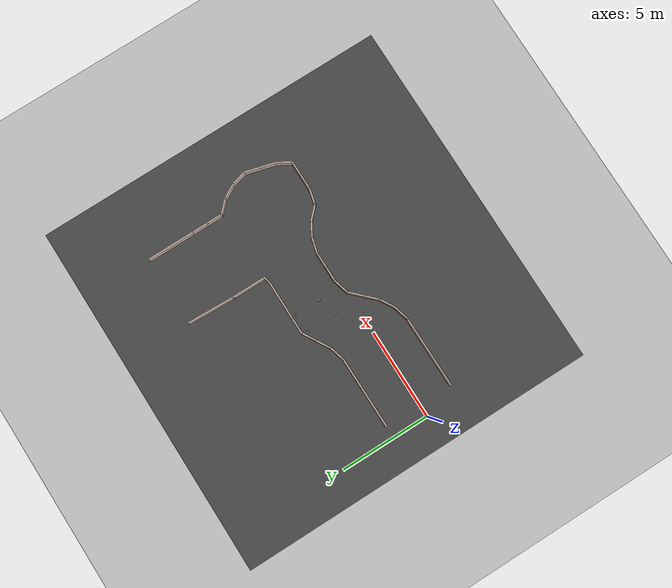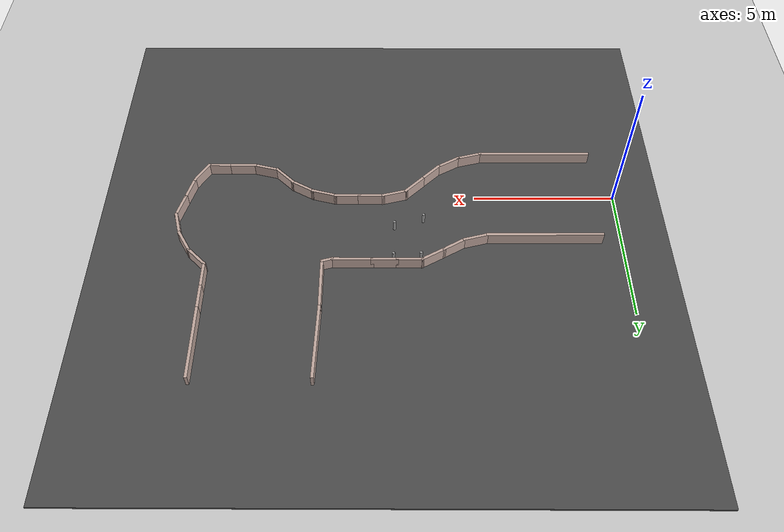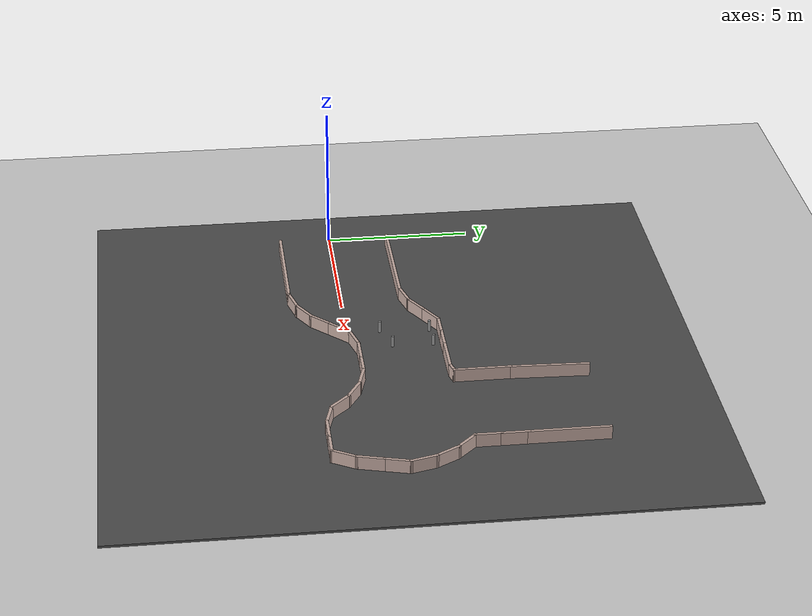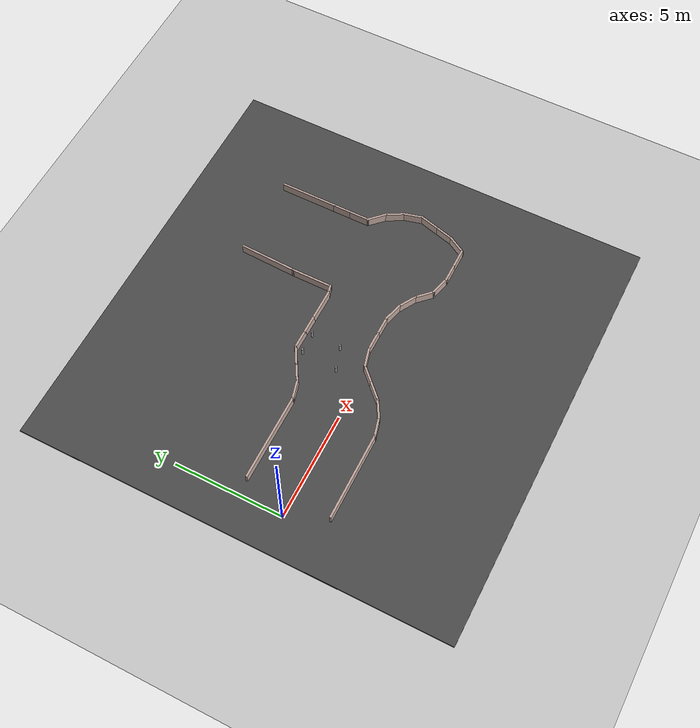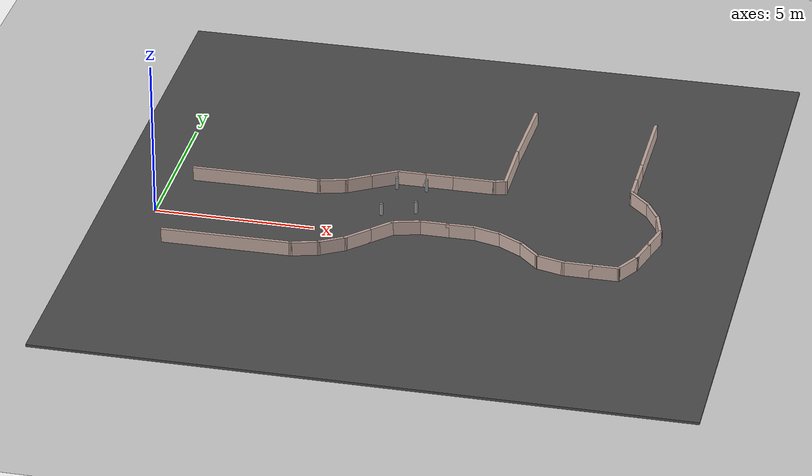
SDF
<sdf version="1.7">
 <world name="default">
  <model name="ground_plane">
   <static>1</static>
   <link name="link">
    <collision name="collision">
     <geometry><plane><normal>0 0 1</normal><size>100 100</size></plane></geometry>
     <surface>
      <contact><collide_bitmask>65535</collide_bitmask></contact>
      <friction><ode><mu>100</mu><mu2>50</mu2></ode></friction>
     </surface>
    </collision>
    <visual name="visual">
     <cast_shadows>0</cast_shadows>
     <geometry><plane><normal>0 0 1</normal><size>100 100</size></plane></geometry>
     <material>
      <script><uri>file://media/materials/scripts/gazebo.material</uri><name>Gazebo/Grey</name></script>
     </material>
    </visual>
   </link>
  </model>
  <model name="Autonomous">
   <pose>8.14492 2.90909 0 0 -0 0</pose>
   <link name="Wall_0">
    <collision name="Wall_0_Collision">
     <geometry><box><size>4.0805 0.1 0.5</size></box></geometry>
     <pose>0 0 0.25 0 -0 0</pose>
    </collision>
    <visual name="Wall_0_Visual">
     <pose>0 0 0.25 0 -0 0</pose>
     <geometry><box><size>4.0805 0.1 0.5</size></box></geometry>
     <material>
      <script><uri>file://media/materials/scripts/gazebo.material</uri><name>Gazebo/Grey</name></script>
      <ambient>0.760784 0.662745 0.627451 1</ambient>
     </material>
     <meta><layer>0</layer></meta>
    </visual>
    <pose>-5.41802 -4.7193 0 0 -0 0.005053</pose>
   </link>
   <link name="Wall_10">
    <collision name="Wall_10_Collision">
     <geometry><box><size>0.95 0.1 0.5</size></box></geometry>
     <pose>0 0 0.25 0 -0 0</pose>
    </collision>
    <visual name="Wall_10_Visual">
     <pose>0 0 0.25 0 -0 0</pose>
     <geometry><box><size>0.95 0.1 0.5</size></box></geometry>
     <material>
      <script><uri>file://media/materials/scripts/gazebo.material</uri><name>Gazebo/Grey</name></script>
      <ambient>0.760784 0.662745 0.627451 1</ambient>
     </material>
     <meta><layer>0</layer></meta>
    </visual>
    <pose>1.42721 -2.64224 0 0 -0 0</pose>
   </link>
   <link name="Wall_11">
    <collision name="Wall_11_Collision">
     <geometry><box><size>0.950248 0.1 0.5</size></box></geometry>
     <pose>0 0 0.25 0 -0 0</pose>
    </collision>
    <visual name="Wall_11_Visual">
     <pose>0 0 0.25 0 -0 0</pose>
     <geometry><box><size>0.950248 0.1 0.5</size></box></geometry>
     <material>
      <script><uri>file://media/materials/scripts/gazebo.material</uri><name>Gazebo/Grey</name></script>
      <ambient>0.760784 0.662745 0.627451 1</ambient>
     </material>
     <meta><layer>0</layer></meta>
    </visual>
    <pose>2.26271 -2.75224 0 0 -0 -0.261815</pose>
   </link>
   <link name="Wall_12">
    <collision name="Wall_12_Collision">
     <geometry><box><size>0.950233 0.1 0.5</size></box></geometry>
     <pose>0 0 0.25 0 -0 0</pose>
    </collision>
    <visual name="Wall_12_Visual">
     <pose>0 0 0.25 0 -0 0</pose>
     <geometry><box><size>0.950233 0.1 0.5</size></box></geometry>
     <material>
      <script><uri>file://media/materials/scripts/gazebo.material</uri><name>Gazebo/Grey</name></script>
      <ambient>0.760784 0.662745 0.627451 1</ambient>
     </material>
     <meta><layer>0</layer></meta>
    </visual>
    <pose>3.04121 -3.07474 0 0 -0 -0.52367</pose>
   </link>
   <link name="Wall_13">
    <collision name="Wall_13_Collision">
     <geometry><box><size>0.950253 0.1 0.5</size></box></geometry>
     <pose>0 0 0.25 0 -0 0</pose>
    </collision>
    <visual name="Wall_13_Visual">
     <pose>0 0 0.25 0 -0 0</pose>
     <geometry><box><size>0.950253 0.1 0.5</size></box></geometry>
     <material>
      <script><uri>file://media/materials/scripts/gazebo.material</uri><name>Gazebo/Grey</name></script>
      <ambient>0.760784 0.662745 0.627451 1</ambient>
     </material>
     <meta><layer>0</layer></meta>
    </visual>
    <pose>3.70971 -3.58774 0 0 -0 -0.785398</pose>
   </link>
   <link name="Wall_14">
    <collision name="Wall_14_Collision">
     <geometry><box><size>0.970267 0.1 0.5</size></box></geometry>
     <pose>0 0 0.25 0 -0 0</pose>
    </collision>
    <visual name="Wall_14_Visual">
     <pose>0 0 0.25 0 -0 0</pose>
     <geometry><box><size>0.970267 0.1 0.5</size></box></geometry>
     <material>
      <script><uri>file://media/materials/scripts/gazebo.material</uri><name>Gazebo/Grey</name></script>
      <ambient>0.760784 0.662745 0.627451 1</ambient>
     </material>
     <meta><layer>0</layer></meta>
    </visual>
    <pose>4.43121 -3.99824 0 0 -0 -0.255569</pose>
   </link>
   <link name="Wall_15">
    <collision name="Wall_15_Collision">
     <geometry><box><size>0.949627 0.1 0.5</size></box></geometry>
     <pose>0 0 0.25 0 -0 0</pose>
    </collision>
    <visual name="Wall_15_Visual">
     <pose>0 0 0.25 0 -0 0</pose>
     <geometry><box><size>0.949627 0.1 0.5</size></box></geometry>
     <material>
      <script><uri>file://media/materials/scripts/gazebo.material</uri><name>Gazebo/Grey</name></script>
      <ambient>0.760784 0.662745 0.627451 1</ambient>
     </material>
     <meta><layer>0</layer></meta>
    </visual>
    <pose>5.27721 -4.10824 0 0 -0 0</pose>
   </link>
   <link name="Wall_16">
    <collision name="Wall_16_Collision">
     <geometry><box><size>0.929513 0.1 0.5</size></box></geometry>
     <pose>0 0 0.25 0 -0 0</pose>
    </collision>
    <visual name="Wall_16_Visual">
     <pose>0 0 0.25 0 -0 0</pose>
     <geometry><box><size>0.929513 0.1 0.5</size></box></geometry>
     <material>
      <script><uri>file://media/materials/scripts/gazebo.material</uri><name>Gazebo/Grey</name></script>
      <ambient>0.760784 0.662745 0.627451 1</ambient>
     </material>
     <meta><layer>0</layer></meta>
    </visual>
    <pose>6.11721 -4.10824 0 0 -0 0</pose>
   </link>
   <link name="Wall_18">
    <collision name="Wall_18_Collision">
     <geometry><box><size>0.949792 0.1 0.5</size></box></geometry>
     <pose>0 0 0.25 0 -0 0</pose>
    </collision>
    <visual name="Wall_18_Visual">
     <pose>0 0 0.25 0 -0 0</pose>
     <geometry><box><size>0.949792 0.1 0.5</size></box></geometry>
     <material>
      <script><uri>file://media/materials/scripts/gazebo.material</uri><name>Gazebo/Grey</name></script>
      <ambient>0.760784 0.662745 0.627451 1</ambient>
     </material>
     <meta><layer>0</layer></meta>
    </visual>
    <pose>6.74471 -3.74024 0 0 -0 1.04713</pose>
   </link>
   <link name="Wall_19">
    <collision name="Wall_19_Collision">
     <geometry><box><size>0.950031 0.1 0.5</size></box></geometry>
     <pose>0 0 0.25 0 -0 0</pose>
    </collision>
    <visual name="Wall_19_Visual">
     <pose>0 0 0.25 0 -0 0</pose>
     <geometry><box><size>0.950031 0.1 0.5</size></box></geometry>
     <material>
      <script><uri>file://media/materials/scripts/gazebo.material</uri><name>Gazebo/Grey</name></script>
      <ambient>0.760784 0.662745 0.627451 1</ambient>
     </material>
     <meta><layer>0</layer></meta>
    </visual>
    <pose>7.06721 -2.96174 0 0 -0 1.30898</pose>
   </link>
   <link name="Wall_20">
    <collision name="Wall_20_Collision">
     <geometry><box><size>0.950066 0.1 0.5</size></box></geometry>
     <pose>0 0 0.25 0 -0 0</pose>
    </collision>
    <visual name="Wall_20_Visual">
     <pose>0 0 0.25 0 -0 0</pose>
     <geometry><box><size>0.950066 0.1 0.5</size></box></geometry>
     <material>
      <script><uri>file://media/materials/scripts/gazebo.material</uri><name>Gazebo/Grey</name></script>
      <ambient>0.760784 0.662745 0.627451 1</ambient>
     </material>
     <meta><layer>0</layer></meta>
    </visual>
    <pose>7.28721 -2.14074 0 0 -0 1.30898</pose>
   </link>
   <link name="Wall_21">
    <collision name="Wall_21_Collision">
     <geometry><box><size>0.950356 0.1 0.5</size></box></geometry>
     <pose>0 0 0.25 0 -0 0</pose>
    </collision>
    <visual name="Wall_21_Visual">
     <pose>0 0 0.25 0 -0 0</pose>
     <geometry><box><size>0.950356 0.1 0.5</size></box></geometry>
     <material>
      <script><uri>file://media/materials/scripts/gazebo.material</uri><name>Gazebo/Grey</name></script>
      <ambient>0.760784 0.662745 0.627451 1</ambient>
     </material>
     <meta><layer>0</layer></meta>
    </visual>
    <pose>7.28721 -1.31974 0 0 -0 1.83261</pose>
   </link>
   <link name="Wall_22">
    <collision name="Wall_22_Collision">
     <geometry><box><size>0.950482 0.1 0.5</size></box></geometry>
     <pose>0 0 0.25 0 -0 0</pose>
    </collision>
    <visual name="Wall_22_Visual">
     <pose>0 0 0.25 0 -0 0</pose>
     <geometry><box><size>0.950482 0.1 0.5</size></box></geometry>
     <material>
      <script><uri>file://media/materials/scripts/gazebo.material</uri><name>Gazebo/Grey</name></script>
      <ambient>0.760784 0.662745 0.627451 1</ambient>
     </material>
     <meta><layer>0</layer></meta>
    </visual>
    <pose>6.96471 -0.54124 0 0 -0 2.09447</pose>
   </link>
   <link name="Wall_23">
    <collision name="Wall_23_Collision">
     <geometry><box><size>0.950626 0.1 0.5</size></box></geometry>
     <pose>0 0 0.25 0 -0 0</pose>
    </collision>
    <visual name="Wall_23_Visual">
     <pose>0 0 0.25 0 -0 0</pose>
     <geometry><box><size>0.950626 0.1 0.5</size></box></geometry>
     <material>
      <script><uri>file://media/materials/scripts/gazebo.material</uri><name>Gazebo/Grey</name></script>
      <ambient>0.760784 0.662745 0.627451 1</ambient>
     </material>
     <meta><layer>0</layer></meta>
    </visual>
    <pose>6.45121 0.12726 0 0 -0 2.35703</pose>
   </link>
   <link name="Wall_25">
    <collision name="Wall_25_Collision">
     <geometry><box><size>0.950436 0.1 0.5</size></box></geometry>
     <pose>0 0 0.25 0 -0 0</pose>
    </collision>
    <visual name="Wall_25_Visual">
     <pose>0 0 0.25 0 -0 0</pose>
     <geometry><box><size>0.950436 0.1 0.5</size></box></geometry>
     <material>
      <script><uri>file://media/materials/scripts/gazebo.material</uri><name>Gazebo/Grey</name></script>
      <ambient>0.760784 0.662745 0.627451 1</ambient>
     </material>
     <meta><layer>0</layer></meta>
    </visual>
    <pose>6.15021 0.85276 0 0 -0 1.5708</pose>
   </link>
   <link name="Wall_26">
    <collision name="Wall_26_Collision">
     <geometry><box><size>0.950436 0.1 0.5</size></box></geometry>
     <pose>0 0 0.25 0 -0 0</pose>
    </collision>
    <visual name="Wall_26_Visual">
     <pose>0 0 0.25 0 -0 0</pose>
     <geometry><box><size>0.950436 0.1 0.5</size></box></geometry>
     <material>
      <script><uri>file://media/materials/scripts/gazebo.material</uri><name>Gazebo/Grey</name></script>
      <ambient>0.760784 0.662745 0.627451 1</ambient>
     </material>
     <meta><layer>0</layer></meta>
    </visual>
    <pose>6.15021 1.70276 0 0 -0 1.5708</pose>
   </link>
   <link name="Wall_3">
    <collision name="Wall_3_Collision">
     <geometry><box><size>0.95 0.1 0.5</size></box></geometry>
     <pose>0 0 0.25 0 -0 0</pose>
    </collision>
    <visual name="Wall_3_Visual">
     <pose>0 0 0.25 0 -0 0</pose>
     <geometry><box><size>0.95 0.1 0.5</size></box></geometry>
     <material>
      <script><uri>file://media/materials/scripts/gazebo.material</uri><name>Gazebo/Grey</name></script>
      <ambient>0.760784 0.662745 0.627451 1</ambient>
     </material>
     <meta><layer>0</layer></meta>
    </visual>
    <pose>-3.01729 -4.59924 0 0 -0 0.261815</pose>
   </link>
   <link name="Wall_31">
    <collision name="Wall_31_Collision">
     <geometry><box><size>4.05051 0.1 0.5</size></box></geometry>
     <pose>0 0 0.25 0 -0 0</pose>
    </collision>
    <visual name="Wall_31_Visual">
     <pose>0 0 0.25 0 -0 0</pose>
     <geometry><box><size>4.05051 0.1 0.5</size></box></geometry>
     <material>
      <script><uri>file://media/materials/scripts/gazebo.material</uri><name>Gazebo/Grey</name></script>
      <ambient>0.760784 0.662745 0.627451 1</ambient>
     </material>
     <meta><layer>0</layer></meta>
    </visual>
    <pose>-5.43302 -0.869297 0 0 -0 0.005091</pose>
   </link>
   <link name="Wall_32">
    <collision name="Wall_32_Collision">
     <geometry><box><size>0.950075 0.1 0.5</size></box></geometry>
     <pose>0 0 0.25 0 -0 0</pose>
    </collision>
    <visual name="Wall_32_Visual">
     <pose>0 0 0.25 0 -0 0</pose>
     <geometry><box><size>0.950075 0.1 0.5</size></box></geometry>
     <material>
      <script><uri>file://media/materials/scripts/gazebo.material</uri><name>Gazebo/Grey</name></script>
      <ambient>0.760784 0.662745 0.627451 1</ambient>
     </material>
     <meta><layer>0</layer></meta>
    </visual>
    <pose>-3.04729 -0.74924 0 0 -0 0.261815</pose>
   </link>
   <link name="Wall_33">
    <collision name="Wall_33_Collision">
     <geometry><box><size>0.932635 0.1 0.5</size></box></geometry>
     <pose>0 0 0.25 0 -0 0</pose>
    </collision>
    <visual name="Wall_33_Visual">
     <pose>0 0 0.25 0 -0 0</pose>
     <geometry><box><size>0.932635 0.1 0.5</size></box></geometry>
     <material>
      <script><uri>file://media/materials/scripts/gazebo.material</uri><name>Gazebo/Grey</name></script>
      <ambient>0.760784 0.662745 0.627451 1</ambient>
     </material>
     <meta><layer>0</layer></meta>
    </visual>
    <pose>-2.27879 -0.42674 0 0 -0 0.535682</pose>
   </link>
   <link name="Wall_34">
    <collision name="Wall_34_Collision">
     <geometry><box><size>0.949895 0.1 0.5</size></box></geometry>
     <pose>0 0 0.25 0 -0 0</pose>
    </collision>
    <visual name="Wall_34_Visual">
     <pose>0 0 0.25 0 -0 0</pose>
     <geometry><box><size>0.949895 0.1 0.5</size></box></geometry>
     <material>
      <script><uri>file://media/materials/scripts/gazebo.material</uri><name>Gazebo/Grey</name></script>
      <ambient>0.760784 0.662745 0.627451 1</ambient>
     </material>
     <meta><layer>0</layer></meta>
    </visual>
    <pose>-1.55279 -0.00174 0 0 -0 0.52367</pose>
   </link>
   <link name="Wall_35">
    <collision name="Wall_35_Collision">
     <geometry><box><size>0.95 0.1 0.5</size></box></geometry>
     <pose>0 0 0.25 0 -0 0</pose>
    </collision>
    <visual name="Wall_35_Visual">
     <pose>0 0 0.25 0 -0 0</pose>
     <geometry><box><size>0.95 0.1 0.5</size></box></geometry>
     <material>
      <script><uri>file://media/materials/scripts/gazebo.material</uri><name>Gazebo/Grey</name></script>
      <ambient>0.760784 0.662745 0.627451 1</ambient>
     </material>
     <meta><layer>0</layer></meta>
    </visual>
    <pose>-0.75979 0.21076 0 0 -0 0</pose>
   </link>
   <link name="Wall_36">
    <collision name="Wall_36_Collision">
     <geometry><box><size>0.95 0.1 0.5</size></box></geometry>
     <pose>0 0 0.25 0 -0 0</pose>
    </collision>
    <visual name="Wall_36_Visual">
     <pose>0 0 0.25 0 -0 0</pose>
     <geometry><box><size>0.95 0.1 0.5</size></box></geometry>
     <material>
      <script><uri>file://media/materials/scripts/gazebo.material</uri><name>Gazebo/Grey</name></script>
      <ambient>0.760784 0.662745 0.627451 1</ambient>
     </material>
     <meta><layer>0</layer></meta>
    </visual>
    <pose>0.09021 0.21076 0 0 -0 0</pose>
   </link>
   <link name="Wall_4">
    <collision name="Wall_4_Collision">
     <geometry><box><size>0.95003 0.1 0.5</size></box></geometry>
     <pose>0 0 0.25 0 -0 0</pose>
    </collision>
    <visual name="Wall_4_Visual">
     <pose>0 0 0.25 0 -0 0</pose>
     <geometry><box><size>0.95003 0.1 0.5</size></box></geometry>
     <material>
      <script><uri>file://media/materials/scripts/gazebo.material</uri><name>Gazebo/Grey</name></script>
      <ambient>0.760784 0.662745 0.627451 1</ambient>
     </material>
     <meta><layer>0</layer></meta>
    </visual>
    <pose>-2.23879 -4.27674 0 0 -0 0.52367</pose>
   </link>
   <link name="Wall_42">
    <collision name="Wall_42_Collision">
     <geometry><box><size>1.45 0.1 0.5</size></box></geometry>
     <pose>0 0 0.25 0 -0 0</pose>
    </collision>
    <visual name="Wall_42_Visual">
     <pose>0 0 0.25 0 -0 0</pose>
     <geometry><box><size>1.45 0.1 0.5</size></box></geometry>
     <material>
      <script><uri>file://media/materials/scripts/gazebo.material</uri><name>Gazebo/Grey</name></script>
      <ambient>0.760784 0.662745 0.627451 1</ambient>
     </material>
     <meta><layer>0</layer></meta>
    </visual>
    <pose>1.19021 0.21076 0 0 -0 0</pose>
   </link>
   <link name="Wall_45">
    <collision name="Wall_45_Collision">
     <geometry><box><size>0.450036 0.1 0.5</size></box></geometry>
     <pose>0 0 0.25 0 -0 0</pose>
    </collision>
    <visual name="Wall_45_Visual">
     <pose>0 0 0.25 0 -0 0</pose>
     <geometry><box><size>0.450036 0.1 0.5</size></box></geometry>
     <material>
      <script><uri>file://media/materials/scripts/gazebo.material</uri><name>Gazebo/Grey</name></script>
      <ambient>0.760784 0.662745 0.627451 1</ambient>
     </material>
     <meta><layer>0</layer></meta>
    </visual>
    <pose>2.03421 0.25626 0 0 -0 0.262995</pose>
   </link>
   <link name="Wall_46">
    <collision name="Wall_46_Collision">
     <geometry><box><size>1.94958 0.1 0.5</size></box></geometry>
     <pose>0 0 0.25 0 -0 0</pose>
    </collision>
    <visual name="Wall_46_Visual">
     <pose>0 0 0.25 0 -0 0</pose>
     <geometry><box><size>1.94958 0.1 0.5</size></box></geometry>
     <material>
      <script><uri>file://media/materials/scripts/gazebo.material</uri><name>Gazebo/Grey</name></script>
      <ambient>0.760784 0.662745 0.627451 1</ambient>
     </material>
     <meta><layer>0</layer></meta>
    </visual>
    <pose>2.20321 1.22676 0 0 -0 1.5708</pose>
   </link>
   <link name="Wall_48">
    <collision name="Wall_48_Collision">
     <geometry><box><size>2.7 0.1 0.5</size></box></geometry>
     <pose>0 0 0.25 0 -0 0</pose>
    </collision>
    <visual name="Wall_48_Visual">
     <pose>0 0 0.25 0 -0 0</pose>
     <geometry><box><size>2.7 0.1 0.5</size></box></geometry>
     <material>
      <script><uri>file://media/materials/scripts/gazebo.material</uri><name>Gazebo/Grey</name></script>
      <ambient>0.760784 0.662745 0.627451 1</ambient>
     </material>
     <meta><layer>0</layer></meta>
    </visual>
    <pose>6.15021 3.42776 0 0 -0 1.5708</pose>
   </link>
   <link name="Wall_5">
    <collision name="Wall_5_Collision">
     <geometry><box><size>0.950109 0.1 0.5</size></box></geometry>
     <pose>0 0 0.25 0 -0 0</pose>
    </collision>
    <visual name="Wall_5_Visual">
     <pose>0 0 0.25 0 -0 0</pose>
     <geometry><box><size>0.950109 0.1 0.5</size></box></geometry>
     <material>
      <script><uri>file://media/materials/scripts/gazebo.material</uri><name>Gazebo/Grey</name></script>
      <ambient>0.760784 0.662745 0.627451 1</ambient>
     </material>
     <meta><layer>0</layer></meta>
    </visual>
    <pose>-1.57029 -3.76374 0 0 -0 0.785398</pose>
   </link>
   <link name="Wall_54">
    <collision name="Wall_54_Collision">
     <geometry><box><size>2.67783 0.1 0.5</size></box></geometry>
     <pose>0 0 0.25 0 -0 0</pose>
    </collision>
    <visual name="Wall_54_Visual">
     <pose>0 0 0.25 0 -0 0</pose>
     <geometry><box><size>2.67783 0.1 0.5</size></box></geometry>
     <material>
      <script><uri>file://media/materials/scripts/gazebo.material</uri><name>Gazebo/Grey</name></script>
      <ambient>0.760784 0.662745 0.627451 1</ambient>
     </material>
     <meta><layer>0</layer></meta>
    </visual>
    <pose>2.25171 3.43976 0 0 -0 -1.60843</pose>
   </link>
   <link name="Wall_6">
    <collision name="Wall_6_Collision">
     <geometry><box><size>0.950167 0.1 0.5</size></box></geometry>
     <pose>0 0 0.25 0 -0 0</pose>
    </collision>
    <visual name="Wall_6_Visual">
     <pose>0 0 0.25 0 -0 0</pose>
     <geometry><box><size>0.950167 0.1 0.5</size></box></geometry>
     <material>
      <script><uri>file://media/materials/scripts/gazebo.material</uri><name>Gazebo/Grey</name></script>
      <ambient>0.760784 0.662745 0.627451 1</ambient>
     </material>
     <meta><layer>0</layer></meta>
    </visual>
    <pose>-0.96929 -3.16274 0 0 -0 0.785398</pose>
   </link>
   <link name="Wall_7">
    <collision name="Wall_7_Collision">
     <geometry><box><size>0.950252 0.1 0.5</size></box></geometry>
     <pose>0 0 0.25 0 -0 0</pose>
    </collision>
    <visual name="Wall_7_Visual">
     <pose>0 0 0.25 0 -0 0</pose>
     <geometry><box><size>0.950252 0.1 0.5</size></box></geometry>
     <material>
      <script><uri>file://media/materials/scripts/gazebo.material</uri><name>Gazebo/Grey</name></script>
      <ambient>0.760784 0.662745 0.627451 1</ambient>
     </material>
     <meta><layer>0</layer></meta>
    </visual>
    <pose>-0.25829 -2.75224 0 0 -0 0.261815</pose>
   </link>
   <link name="Wall_8">
    <collision name="Wall_8_Collision">
     <geometry><box><size>0.950277 0.1 0.5</size></box></geometry>
     <pose>0 0 0.25 0 -0 0</pose>
    </collision>
    <visual name="Wall_8_Visual">
     <pose>0 0 0.25 0 -0 0</pose>
     <geometry><box><size>0.950277 0.1 0.5</size></box></geometry>
     <material>
      <script><uri>file://media/materials/scripts/gazebo.material</uri><name>Gazebo/Grey</name></script>
      <ambient>0.760784 0.662745 0.627451 1</ambient>
     </material>
     <meta><layer>0</layer></meta>
    </visual>
    <pose>0.57721 -2.64224 0 0 -0 0</pose>
   </link>
   <static>1</static>
  </model>
  <model name="Cone_clone_5">
   <link name="link_1">
    <inertial>
     <mass>1</mass>
     <inertia><ixx>0.145833</ixx><ixy>0</ixy><ixz>0</ixz><iyy>0.145833</iyy><iyz>0</iyz><izz>0.125</izz></inertia>
    </inertial>
    <visual name="visual">
     <geometry><cylinder><radius>0.05</radius><length>0.4</length></cylinder></geometry>
     <material>
      <lighting>1</lighting>
      <script><uri>file://media/materials/scripts/gazebo.material</uri><name>Gazebo/Grey</name></script>
      <shader type="pixel"><normal_map>__default__</normal_map></shader>
      <ambient>1 1 1 1</ambient>
      <diffuse>1 1 1 1</diffuse>
      <specular>0.01 0.01 0.01 1</specular>
      <emissive>0 0 0 1</emissive>
     </material>
    </visual>
    <collision name="collision">
     <geometry><cylinder><radius>0.05</radius><length>0.4</length></cylinder></geometry>
     <surface>
      <friction>
       <ode><mu>1</mu><mu2>1</mu2><fdir1>0 0 0</fdir1><slip1>0</slip1><slip2>0</slip2></ode>
       <torsional>
        <coefficient>1</coefficient>
        <patch_radius>0</patch_radius>
        <surface_radius>0</surface_radius>
        <use_patch_radius>1</use_patch_radius>
        <ode><slip>0</slip></ode>
       </torsional>
      </friction>
      <bounce><restitution_coefficient>0</restitution_coefficient><threshold>1e+06</threshold></bounce>
      <contact>
       <collide_without_contact>0</collide_without_contact>
       <collide_without_contact_bitmask>1</collide_without_contact_bitmask>
       <collide_bitmask>1</collide_bitmask>
       <ode>
        <soft_cfm>0</soft_cfm>
        <soft_erp>0.2</soft_erp>
        <kp>1e+13</kp>
        <kd>1</kd>
        <max_vel>0.01</max_vel>
        <min_depth>0</min_depth>
       </ode>
       <bullet>
        <split_impulse>1</split_impulse>
        <split_impulse_penetration_threshold>-0.01</split_impulse_penetration_threshold>
        <soft_cfm>0</soft_cfm>
        <soft_erp>0.2</soft_erp>
        <kp>1e+13</kp>
        <kd>1</kd>
       </bullet>
      </contact>
     </surface>
    </collision>
   </link>
   <static>0</static>
   <pose>6.87543 1.12702 0.249999 -5.7e-05 2.2e-05 3e-05</pose>
  </model>
  <model name="Cone_clone_6">
   <link name="link_1">
    <inertial>
     <mass>1</mass>
     <inertia><ixx>0.145833</ixx><ixy>0</ixy><ixz>0</ixz><iyy>0.145833</iyy><iyz>0</iyz><izz>0.125</izz></inertia>
    </inertial>
    <visual name="visual">
     <geometry><cylinder><radius>0.05</radius><length>0.4</length></cylinder></geometry>
     <material>
      <lighting>1</lighting>
      <script><uri>file://media/materials/scripts/gazebo.material</uri><name>Gazebo/Grey</name></script>
      <shader type="pixel"><normal_map>__default__</normal_map></shader>
      <ambient>1 1 1 1</ambient>
      <diffuse>1 1 1 1</diffuse>
      <specular>0.01 0.01 0.01 1</specular>
      <emissive>0 0 0 1</emissive>
     </material>
    </visual>
    <collision name="collision">
     <geometry><cylinder><radius>0.05</radius><length>0.4</length></cylinder></geometry>
     <surface>
      <friction>
       <ode><mu>1</mu><mu2>1</mu2><fdir1>0 0 0</fdir1><slip1>0</slip1><slip2>0</slip2></ode>
       <torsional>
        <coefficient>1</coefficient>
        <patch_radius>0</patch_radius>
        <surface_radius>0</surface_radius>
        <use_patch_radius>1</use_patch_radius>
        <ode><slip>0</slip></ode>
       </torsional>
      </friction>
      <bounce><restitution_coefficient>0</restitution_coefficient><threshold>1e+06</threshold></bounce>
      <contact>
       <collide_without_contact>0</collide_without_contact>
       <collide_without_contact_bitmask>1</collide_without_contact_bitmask>
       <collide_bitmask>1</collide_bitmask>
       <ode>
        <soft_cfm>0</soft_cfm>
        <soft_erp>0.2</soft_erp>
        <kp>1e+13</kp>
        <kd>1</kd>
        <max_vel>0.01</max_vel>
        <min_depth>0</min_depth>
       </ode>
       <bullet>
        <split_impulse>1</split_impulse>
        <split_impulse_penetration_threshold>-0.01</split_impulse_penetration_threshold>
        <soft_cfm>0</soft_cfm>
        <soft_erp>0.2</soft_erp>
        <kp>1e+13</kp>
        <kd>1</kd>
       </bullet>
      </contact>
     </surface>
    </collision>
   </link>
   <static>0</static>
   <pose>7.89651 1.4592 0.249999 -3.6e-05 2.2e-05 -1.7e-05</pose>
  </model>
  <model name="Cone_clone_29">
   <link name="link_1">
    <inertial>
     <mass>1</mass>
     <inertia><ixx>0.145833</ixx><ixy>0</ixy><ixz>0</ixz><iyy>0.145833</iyy><iyz>0</iyz><izz>0.125</izz></inertia>
    </inertial>
    <visual name="visual">
     <geometry><cylinder><radius>0.05</radius><length>0.4</length></cylinder></geometry>
     <material>
      <lighting>1</lighting>
      <script><uri>file://media/materials/scripts/gazebo.material</uri><name>Gazebo/Grey</name></script>
      <shader type="pixel"><normal_map>__default__</normal_map></shader>
      <ambient>1 1 1 1</ambient>
      <diffuse>1 1 1 1</diffuse>
      <specular>0.01 0.01 0.01 1</specular>
      <emissive>0 0 0 1</emissive>
     </material>
    </visual>
    <collision name="collision">
     <geometry><cylinder><radius>0.05</radius><length>0.4</length></cylinder></geometry>
     <surface>
      <friction>
       <ode><mu>1</mu><mu2>1</mu2><fdir1>0 0 0</fdir1><slip1>0</slip1><slip2>0</slip2></ode>
       <torsional>
        <coefficient>1</coefficient>
        <patch_radius>0</patch_radius>
        <surface_radius>0</surface_radius>
        <use_patch_radius>1</use_patch_radius>
        <ode><slip>0</slip></ode>
       </torsional>
      </friction>
      <bounce><restitution_coefficient>0</restitution_coefficient><threshold>1e+06</threshold></bounce>
      <contact>
       <collide_without_contact>0</collide_without_contact>
       <collide_without_contact_bitmask>1</collide_without_contact_bitmask>
       <collide_bitmask>1</collide_bitmask>
       <ode>
        <soft_cfm>0</soft_cfm>
        <soft_erp>0.2</soft_erp>
        <kp>1e+13</kp>
        <kd>1</kd>
        <max_vel>0.01</max_vel>
        <min_depth>0</min_depth>
       </ode>
       <bullet>
        <split_impulse>1</split_impulse>
        <split_impulse_penetration_threshold>-0.01</split_impulse_penetration_threshold>
        <soft_cfm>0</soft_cfm>
        <soft_erp>0.2</soft_erp>
        <kp>1e+13</kp>
        <kd>1</kd>
       </bullet>
      </contact>
     </surface>
    </collision>
   </link>
   <static>0</static>
   <pose>6.99756 2.80778 0.249999 -6.8e-05 2.7e-05 3.9e-05</pose>
  </model>
  <model name="Cone_clone_30">
   <link name="link_1">
    <inertial>
     <mass>1</mass>
     <inertia><ixx>0.145833</ixx><ixy>0</ixy><ixz>0</ixz><iyy>0.145833</iyy><iyz>0</iyz><izz>0.125</izz></inertia>
    </inertial>
    <visual name="visual">
     <geometry><cylinder><radius>0.05</radius><length>0.4</length></cylinder></geometry>
     <material>
      <lighting>1</lighting>
      <script><uri>file://media/materials/scripts/gazebo.material</uri><name>Gazebo/Grey</name></script>
      <shader type="pixel"><normal_map>__default__</normal_map></shader>
      <ambient>1 1 1 1</ambient>
      <diffuse>1 1 1 1</diffuse>
      <specular>0.01 0.01 0.01 1</specular>
      <emissive>0 0 0 1</emissive>
     </material>
    </visual>
    <collision name="collision">
     <geometry><cylinder><radius>0.05</radius><length>0.4</length></cylinder></geometry>
     <surface>
      <friction>
       <ode><mu>1</mu><mu2>1</mu2><fdir1>0 0 0</fdir1><slip1>0</slip1><slip2>0</slip2></ode>
       <torsional>
        <coefficient>1</coefficient>
        <patch_radius>0</patch_radius>
        <surface_radius>0</surface_radius>
        <use_patch_radius>1</use_patch_radius>
        <ode><slip>0</slip></ode>
       </torsional>
      </friction>
      <bounce><restitution_coefficient>0</restitution_coefficient><threshold>1e+06</threshold></bounce>
      <contact>
       <collide_without_contact>0</collide_without_contact>
       <collide_without_contact_bitmask>1</collide_without_contact_bitmask>
       <collide_bitmask>1</collide_bitmask>
       <ode>
        <soft_cfm>0</soft_cfm>
        <soft_erp>0.2</soft_erp>
        <kp>1e+13</kp>
        <kd>1</kd>
        <max_vel>0.01</max_vel>
        <min_depth>0</min_depth>
       </ode>
       <bullet>
        <split_impulse>1</split_impulse>
        <split_impulse_penetration_threshold>-0.01</split_impulse_penetration_threshold>
        <soft_cfm>0</soft_cfm>
        <soft_erp>0.2</soft_erp>
        <kp>1e+13</kp>
        <kd>1</kd>
       </bullet>
      </contact>
     </surface>
    </collision>
   </link>
   <static>0</static>
   <pose>7.93175 2.8382 0.25 -5.3e-05 7.8e-05 3.7e-05</pose>
  </model>
  <model name="asphalt_plane">
   <static>1</static>
   <link name="link">
    <collision name="collision"><geometry><box><size>20 20 0.1</size></box></geometry></collision>
    <visual name="visual">
     <cast_shadows>0</cast_shadows>
     <geometry><box><size>20 20 0.1</size></box></geometry>
     <material>
      <script>
       <uri>model://asphalt_plane/materials/scripts</uri>
       <uri>model://asphalt_plane/materials/textures</uri>
       <name>vrc/asphalt</name>
      </script>
     </material>
    </visual>
   </link>
   <pose>8.33296 1.58743 0 0 -0 0</pose>
  </model>
 </world>
</sdf>
